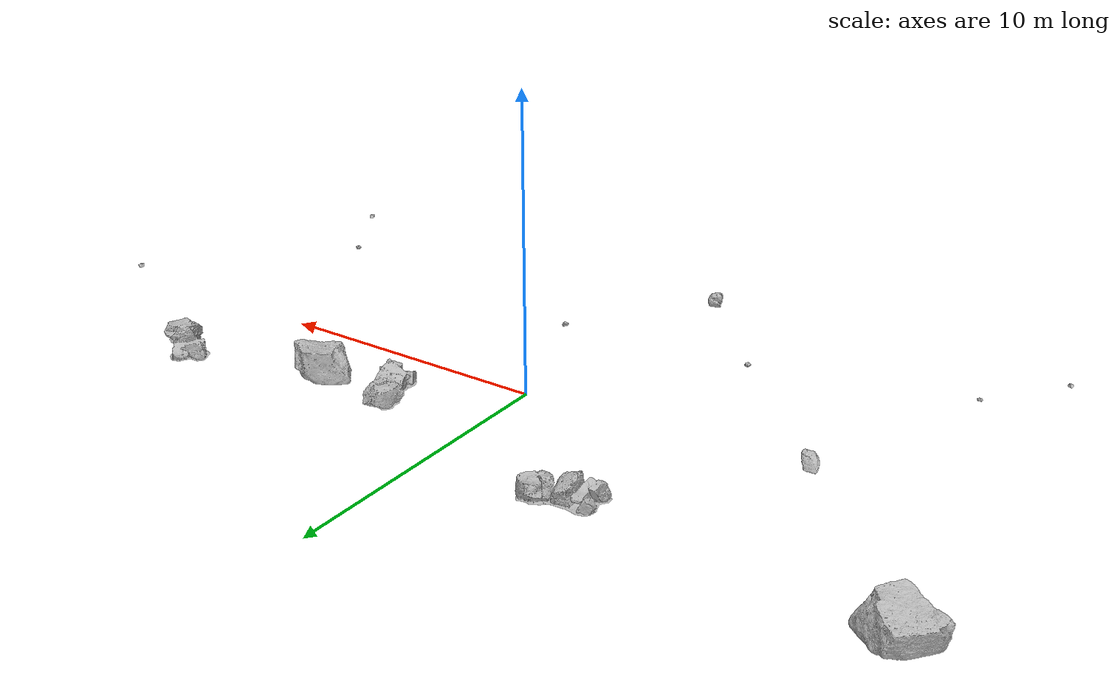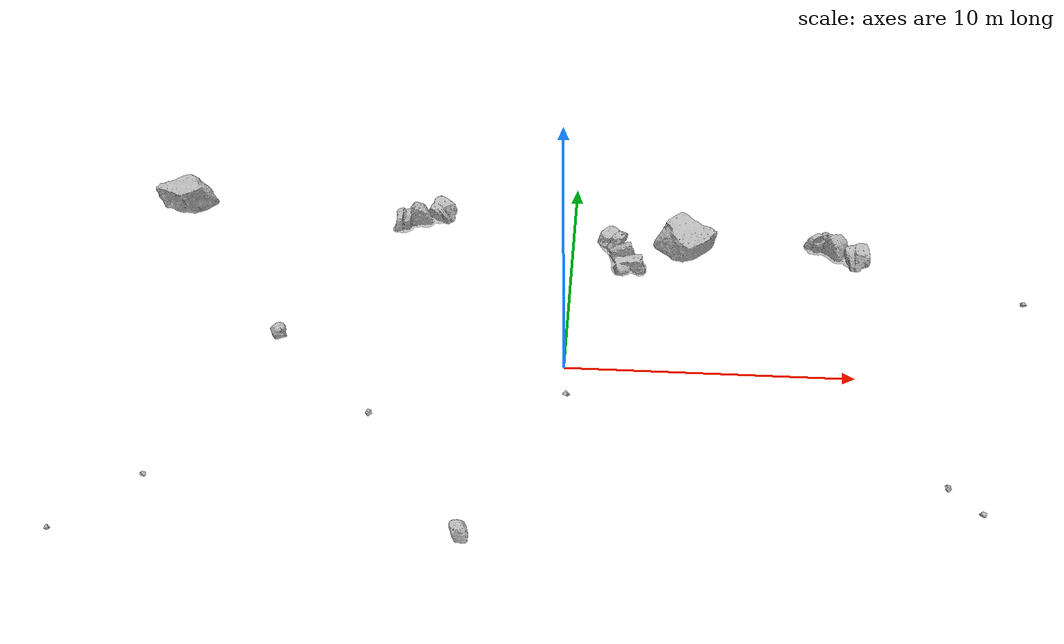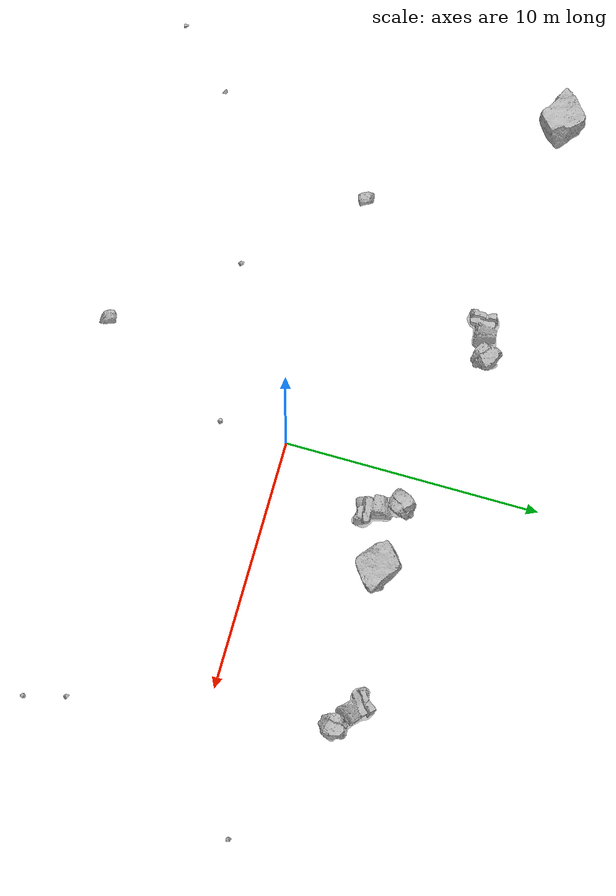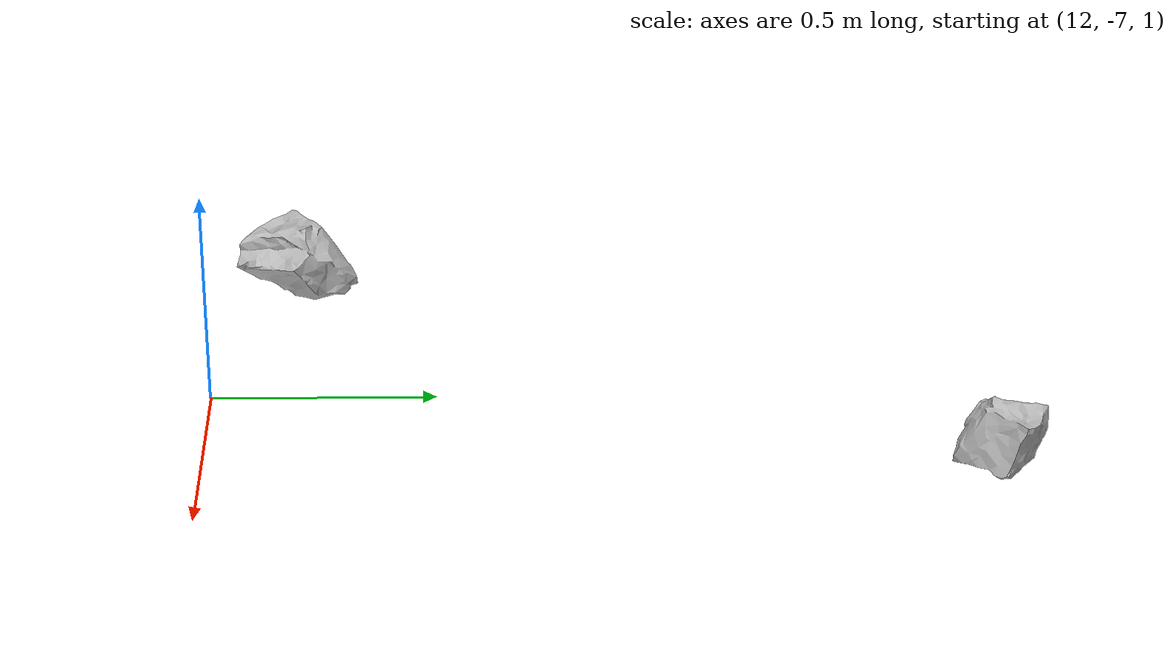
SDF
<sdf version="1.7">
 <world name="marsyard">
  <gravity>0 0 -9.81</gravity>
  <physics name="dart_physics" type="ignored">
   <max_step_size>0.003</max_step_size>
   <real_time_update_rate>333</real_time_update_rate>
   <real_time_factor>1.0</real_time_factor>
  </physics>
  <plugin filename="ignition-gazebo-physics-system" name="ignition::gazebo::systems::Physics"/>
  <plugin filename="ignition-gazebo-user-commands-system" name="ignition::gazebo::systems::UserCommands"/>
  <plugin filename="ignition-gazebo-scene-broadcaster-system" name="ignition::gazebo::systems::SceneBroadcaster"/>
  <plugin filename="ignition-gazebo-contact-system" name="ignition::gazebo::systems::Contact"/>
  <scene>
   <ambient>0.95 0.95 0.95 1</ambient>
   <background>0.70 0.70 0.70 1</background>
   <shadows>false</shadows>
  </scene>
  <light type="directional" name="sun">
   <cast_shadows>false</cast_shadows>
   <pose>0 0 30 0 0 0</pose>
   <diffuse>1 1 1 1</diffuse>
   <specular>0.15 0.15 0.15 1</specular>
   <direction>-0.35 0.1 -0.93</direction>
  </light>
  <model name="Rock_2">
   <static>true</static>
   <pose>4.2444 4.8949 1.5301 0.0000 0.0000 -1.6265</pose>
   <link name="link">
    <visual name="visual">
     <geometry><mesh><uri>package://rock_generator/rocks_ws/rock_1/meshes/rock_1.stl</uri></mesh></geometry>
    </visual>
   </link>
  </model>
  <model name="Rock_3">
   <static>true</static>
   <pose>-9.9511 0.4026 0.7683 0.0000 0.0000 -0.0700</pose>
   <link name="link">
    <visual name="visual">
     <geometry><mesh><uri>package://rock_generator/rocks_ws/rock_3/meshes/rock_3.stl</uri></mesh></geometry>
    </visual>
    <collision name="collision">
     <geometry><mesh><uri>package://rock_generator/rocks_ws/rock_3/meshes/rock_3.stl</uri></mesh></geometry>
    </collision>
   </link>
  </model>
  <model name="Rock_4">
   <static>true</static>
   <pose>-12.6430 -6.0500 0.9186 0.0000 0.0000 -1.0635</pose>
   <link name="link">
    <visual name="visual">
     <geometry><mesh><uri>package://rock_generator/rocks_ws/rock_7/meshes/rock_7.stl</uri></mesh></geometry>
    </visual>
   </link>
  </model>
  <model name="Rock_6">
   <static>true</static>
   <pose>-15.0442 6.7311 1.1957 0.0000 0.0000 1.6231</pose>
   <link name="link">
    <visual name="visual">
     <geometry><mesh><uri>package://rock_generator/rocks_ws/rock_1/meshes/rock_1.stl</uri></mesh></geometry>
    </visual>
    <collision name="collision">
     <geometry><mesh><uri>package://rock_generator/rocks_ws/rock_1/meshes/rock_1.stl</uri></mesh></geometry>
    </collision>
   </link>
  </model>
  <model name="Rock_7">
   <static>true</static>
   <pose>12.0037 -5.2346 0.8992 0.0000 0.0000 3.0301</pose>
   <link name="link">
    <visual name="visual">
     <geometry><mesh><uri>package://rock_generator/rocks_ws/rock_9/meshes/rock_9.stl</uri></mesh></geometry>
    </visual>
   </link>
  </model>
  <model name="Rock_8">
   <static>true</static>
   <pose>-2.6534 -7.8757 1.0296 0.0000 0.0000 2.9153</pose>
   <link name="link">
    <visual name="visual">
     <geometry><mesh><uri>package://rock_generator/rocks_ws/rock_3/meshes/rock_3.stl</uri></mesh></geometry>
    </visual>
    <collision name="collision">
     <geometry><mesh><uri>package://rock_generator/rocks_ws/rock_3/meshes/rock_3.stl</uri></mesh></geometry>
    </collision>
   </link>
  </model>
  <model name="Rock_11">
   <static>true</static>
   <pose>0.2102 -2.5510 1.5034 0.0000 0.0000 -1.9380</pose>
   <link name="link">
    <visual name="visual">
     <geometry><mesh><uri>package://rock_generator/rocks_ws/rock_9/meshes/rock_9.stl</uri></mesh></geometry>
    </visual>
    <collision name="collision">
     <geometry><mesh><uri>package://rock_generator/rocks_ws/rock_9/meshes/rock_9.stl</uri></mesh></geometry>
    </collision>
   </link>
  </model>
  <model name="Rock_14">
   <static>true</static>
   <pose>12.5584 -6.7479 1.6692 0.0000 0.0000 -0.4458</pose>
   <link name="link">
    <visual name="visual">
     <geometry><mesh><uri>package://rock_generator/rocks_ws/rock_9/meshes/rock_9.stl</uri></mesh></geometry>
    </visual>
    <collision name="collision">
     <geometry><mesh><uri>package://rock_generator/rocks_ws/rock_9/meshes/rock_9.stl</uri></mesh></geometry>
    </collision>
   </link>
  </model>
  <model name="Rock_16">
   <static>true</static>
   <pose>-5.6121 6.3019 1.2931 0.0000 0.0000 -2.7768</pose>
   <link name="link">
    <visual name="visual">
     <geometry><mesh><uri>package://rock_generator/rocks_ws/rock_2/meshes/rock_2.stl</uri></mesh></geometry>
    </visual>
    <collision name="collision">
     <geometry><mesh><uri>package://rock_generator/rocks_ws/rock_2/meshes/rock_2.stl</uri></mesh></geometry>
    </collision>
   </link>
  </model>
  <model name="Rock_18">
   <static>true</static>
   <pose>-6.0569 -3.5202 1.3102 0.0000 0.0000 2.9146</pose>
   <link name="link">
    <visual name="visual">
     <geometry><mesh><uri>package://rock_generator/rocks_ws/rock_9/meshes/rock_9.stl</uri></mesh></geometry>
    </visual>
   </link>
  </model>
  <model name="Rock_19">
   <static>true</static>
   <pose>-14.7420 -8.2559 1.0644 0.0000 0.0000 1.8379</pose>
   <link name="link">
    <visual name="visual">
     <geometry><mesh><uri>package://rock_generator/rocks_ws/rock_7/meshes/rock_7.stl</uri></mesh></geometry>
    </visual>
   </link>
  </model>
  <model name="Rock_20">
   <static>true</static>
   <pose>9.9177 5.1793 1.1548 0.0000 0.0000 2.5626</pose>
   <link name="link">
    <visual name="visual">
     <geometry><mesh><uri>package://rock_generator/rocks_ws/rock_2/meshes/rock_2.stl</uri></mesh></geometry>
    </visual>
    <collision name="collision">
     <geometry><mesh><uri>package://rock_generator/rocks_ws/rock_2/meshes/rock_2.stl</uri></mesh></geometry>
    </collision>
   </link>
  </model>
  <model name="Rock_21">
   <static>true</static>
   <pose>1.7968 4.4303 1.4527 0.0000 0.0000 -1.1193</pose>
   <link name="link">
    <visual name="visual">
     <geometry><mesh><uri>package://rock_generator/rocks_ws/rock_2/meshes/rock_2.stl</uri></mesh></geometry>
    </visual>
    <collision name="collision">
     <geometry><mesh><uri>package://rock_generator/rocks_ws/rock_2/meshes/rock_2.stl</uri></mesh></geometry>
    </collision>
   </link>
  </model>
  <model name="Rock_22">
   <static>true</static>
   <pose>15.7481 2.2286 1.7319 0.0000 0.0000 0.3129</pose>
   <link name="link">
    <visual name="visual">
     <geometry><mesh><uri>package://rock_generator/rocks_ws/rock_9/meshes/rock_9.stl</uri></mesh></geometry>
    </visual>
    <collision name="collision">
     <geometry><mesh><uri>package://rock_generator/rocks_ws/rock_9/meshes/rock_9.stl</uri></mesh></geometry>
    </collision>
   </link>
  </model>
 </world>
</sdf>
